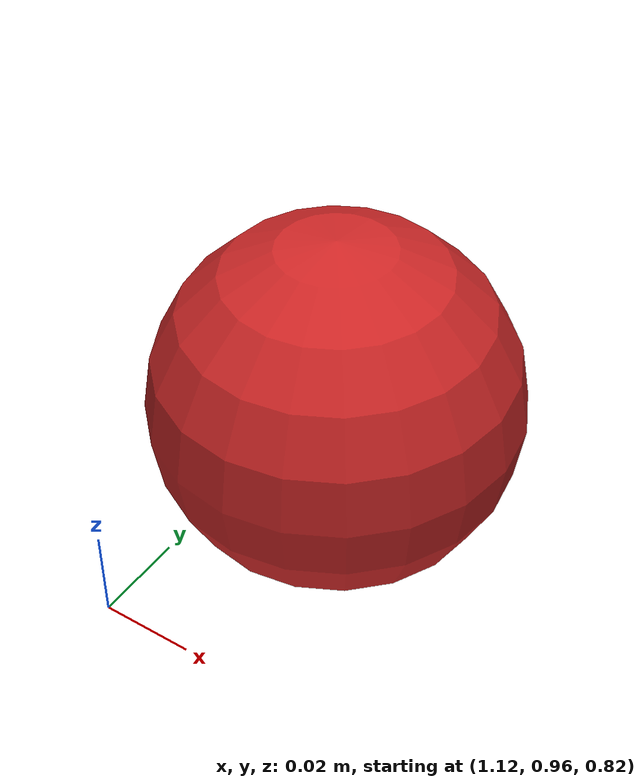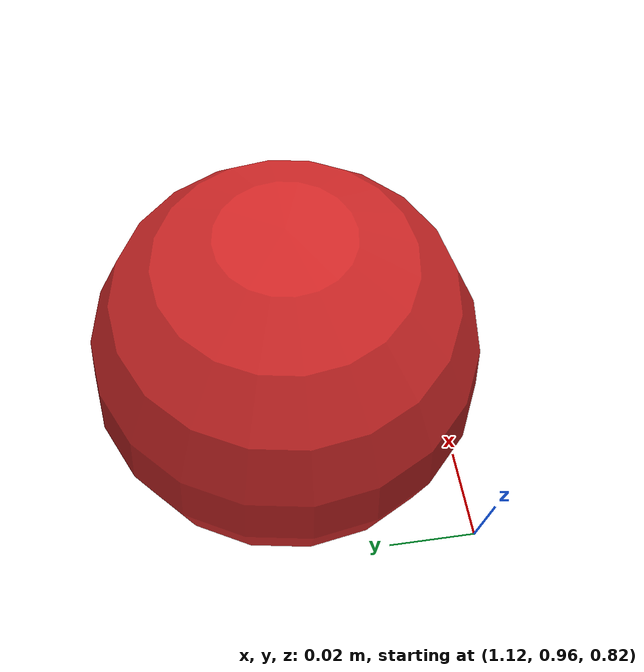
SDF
<?xml version="1.0" ?>
<sdf version="1.5">
  <world name="default">
    <!-- A global light source -->
    <include>
      <uri>model://sun</uri>
    </include>
    <!-- A ground plane -->
    <include>
      <uri>model://ground_plane</uri>
    </include>

    <model name='cricket_ball'>
      <link name='cricket_ball'>
        <pose frame=''>1 1 0.0375 0 -0 0</pose>
        <inertial>
          <mass>1</mass>0.1467
          <inertia>
            <ixx>8.25187e-05</ixx>
            <ixy>0</ixy>
            <ixz>0</ixz>
            <iyy>8.25187e-05</iyy>
            <iyz>0</iyz>
            <izz>8.25187e-05</izz>
          </inertia>
        </inertial>
        <collision name='collision'>
          <geometry>
            <sphere>
              <radius>1</radius>   0.0375
            </sphere>
          </geometry>
          <surface>
            <contact>
              <poissons_ratio>0.347</poissons_ratio>
              <elastic_modulus>8.8e+09</elastic_modulus>
              <ode>
                <kp>100000</kp>
                <kd>100</kd>
                <max_vel>100</max_vel>
                <min_depth>0.001</min_depth>
              </ode>
            </contact>
            <friction>
              <torsional>
                <coefficient>1</coefficient>
                <use_patch_radius>0</use_patch_radius>
                <surface_radius>0.01</surface_radius>
                <ode/>
              </torsional>
              <ode/>
            </friction>
            <bounce/>
          </surface>
          <max_contacts>10</max_contacts>
        </collision>
        <visual name='visual'>
          <geometry>
            <sphere>
              <radius>0.0375</radius>
            </sphere>
          </geometry>
          <material>
            <script>
              <uri>file://media/materials/scripts/gazebo.material</uri>
              <name>Gazebo/Red</name>
            </script>
          </material>
        </visual>
        <velocity_decay>
          <linear>0</linear>
          <angular>0.005</angular>
        </velocity_decay>
        <self_collide>0</self_collide>
        <kinematic>0</kinematic>
      </link>
      <pose frame=''>0.15003 -5.5e-05 0.82 0.003644 -0.00082 0.000309</pose>
    </model>

    <model name='cricket_ball'>
        <pose frame=''>0.15003 -5.5e-05 0.82 0.003644 -0.00082 0.000309</pose>
        <scale>1 1 1</scale>
        <link name='cricket_ball'>
          <pose frame=''>0.15 -0.000192 0.835975 0.003644 -0.00082 0.000309</pose>
          <velocity>0 0 0 0 -0 0</velocity>
          <acceleration>0.00314 0.179937 -0.256644 2.55004 -1.5124 2.12055</acceleration>
          <wrench>0.000461 0.026397 -0.03765 0 -0 0</wrench>
        </link>
      </model>

  </world>
</sdf>
